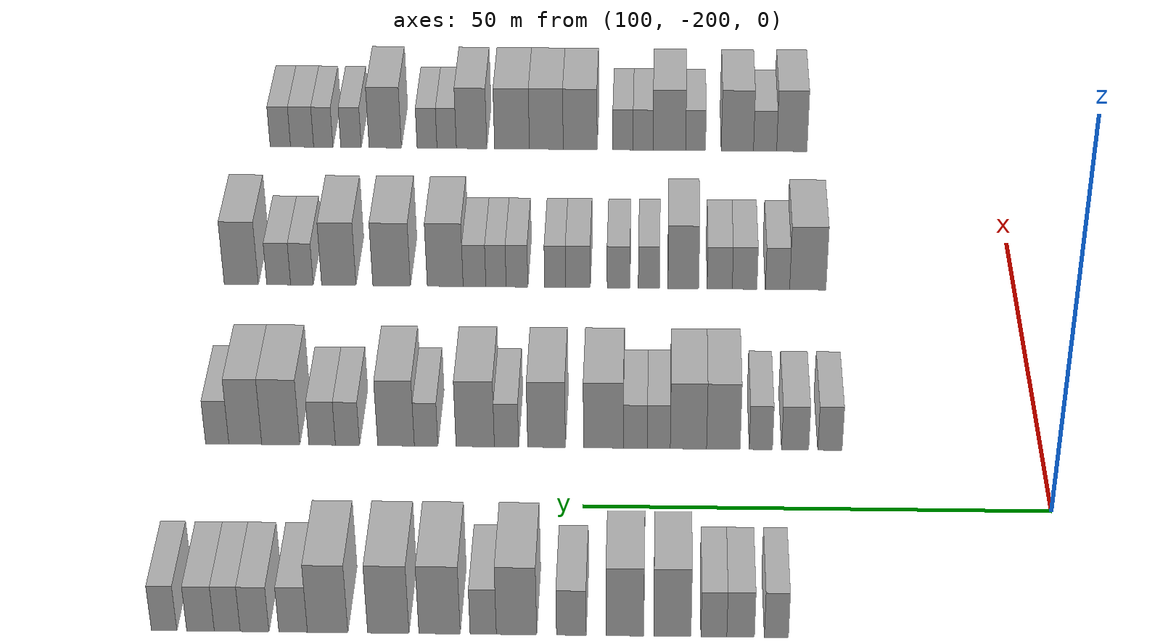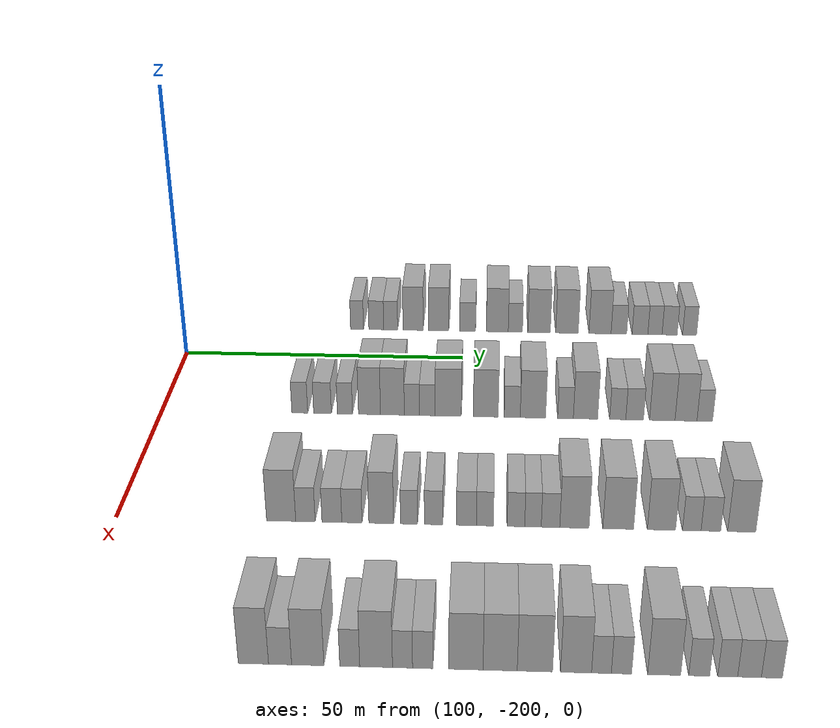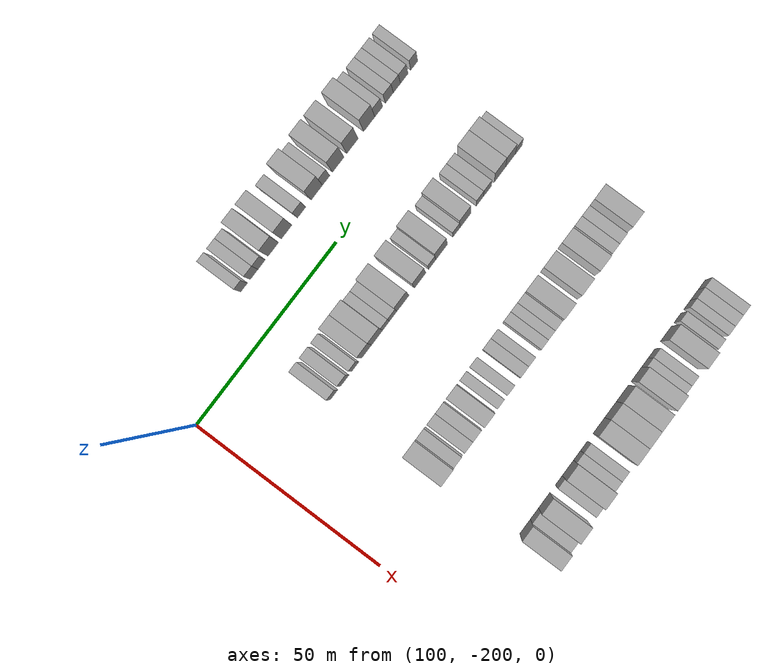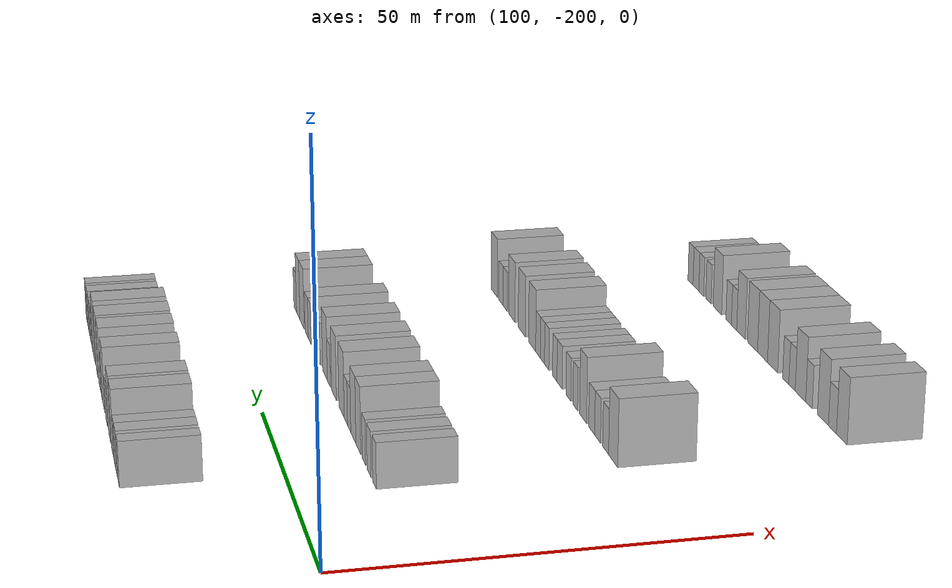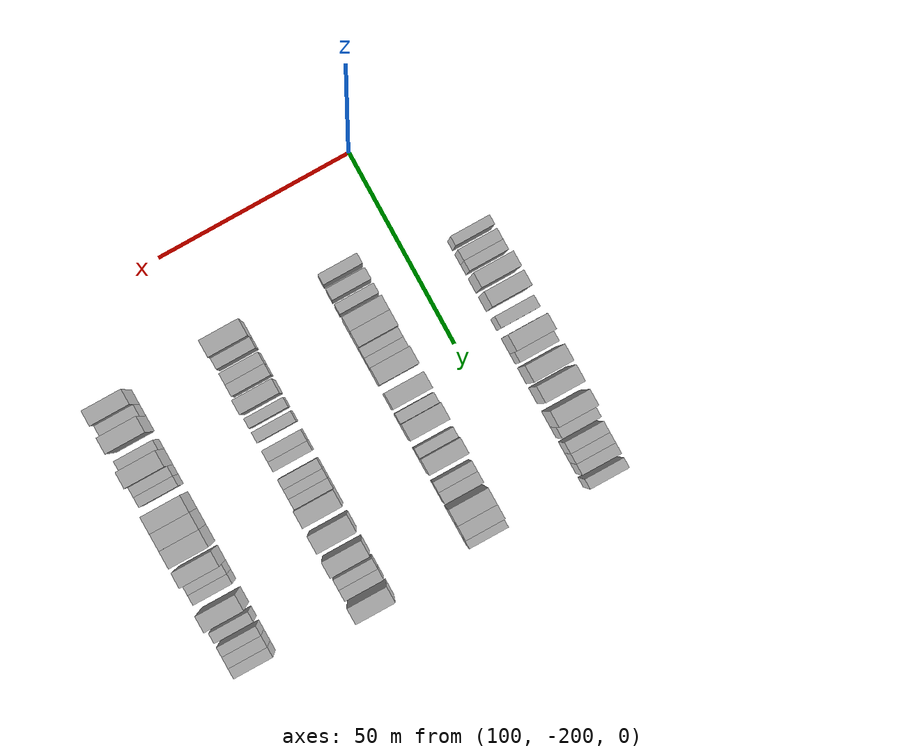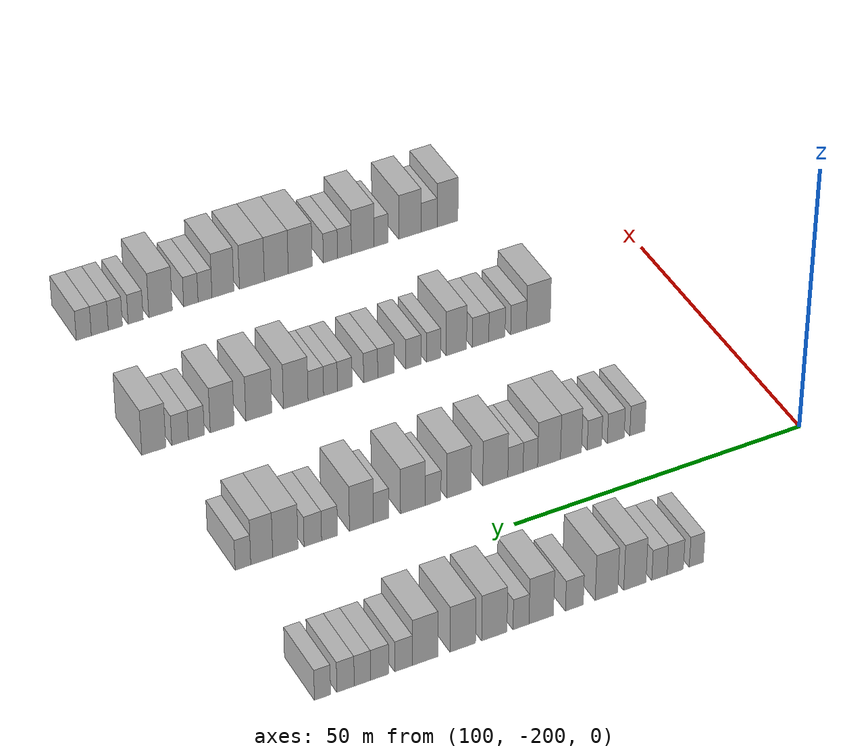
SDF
<sdf version="1.6">
 <world name="default">
  <model name="building_527">
   <static>1</static>
   <pose>85.0000 -170.0316 0 0.000000 0.000000 0.000000</pose>
   <link name="link">
    <pose>0 0 3.00 0 0 0</pose>
    <collision name="collision"><geometry><box><size>10.0000 2.4276 6.0000</size></box></geometry></collision>
    <visual name="visual">
     <cast_shadows>0</cast_shadows>
     <geometry><box><size>10.0000 2.4276 6.0000</size></box></geometry>
     <material>
      <script>
       <uri>model://HANNAS_wall/materials/scripts</uri>
       <uri>model://HANNAS_wall/materials/textures</uri>
       <name>vrc/HANNAS_wall</name>
      </script>
     </material>
    </visual>
   </link>
  </model>
  <model name="building_528">
   <static>1</static>
   <pose>85.0000 -166.4249 0 0.000000 0.000000 0.000000</pose>
   <link name="link">
    <pose>0 0 3.00 0 0 0</pose>
    <collision name="collision"><geometry><box><size>10.0000 2.7856 6.0000</size></box></geometry></collision>
    <visual name="visual">
     <cast_shadows>0</cast_shadows>
     <geometry><box><size>10.0000 2.7856 6.0000</size></box></geometry>
     <material>
      <script>
       <uri>model://HANNAS_wall/materials/scripts</uri>
       <uri>model://HANNAS_wall/materials/textures</uri>
       <name>vrc/HANNAS_wall</name>
      </script>
     </material>
    </visual>
   </link>
  </model>
  <model name="building_529">
   <static>1</static>
   <pose>85.0000 -163.7245 0 0.000000 0.000000 0.000000</pose>
   <link name="link">
    <pose>0 0 3.00 0 0 0</pose>
    <collision name="collision"><geometry><box><size>10.0000 2.6153 6.0000</size></box></geometry></collision>
    <visual name="visual">
     <cast_shadows>0</cast_shadows>
     <geometry><box><size>10.0000 2.6153 6.0000</size></box></geometry>
     <material>
      <script>
       <uri>model://HANNAS_wall/materials/scripts</uri>
       <uri>model://HANNAS_wall/materials/textures</uri>
       <name>vrc/HANNAS_wall</name>
      </script>
     </material>
    </visual>
   </link>
  </model>
  <model name="building_530">
   <static>1</static>
   <pose>85.0000 -159.5327 0 0.000000 0.000000 0.000000</pose>
   <link name="link">
    <pose>0 0 4.50 0 0 0</pose>
    <collision name="collision"><geometry><box><size>10.0000 3.7682 9.0000</size></box></geometry></collision>
    <visual name="visual">
     <cast_shadows>0</cast_shadows>
     <geometry><box><size>10.0000 3.7682 9.0000</size></box></geometry>
     <material>
      <script>
       <uri>model://HANNAS_wall/materials/scripts</uri>
       <uri>model://HANNAS_wall/materials/textures</uri>
       <name>vrc/HANNAS_wall</name>
      </script>
     </material>
    </visual>
   </link>
  </model>
  <model name="building_531">
   <static>1</static>
   <pose>85.0000 -154.7418 0 0.000000 0.000000 0.000000</pose>
   <link name="link">
    <pose>0 0 4.50 0 0 0</pose>
    <collision name="collision"><geometry><box><size>10.0000 3.8137 9.0000</size></box></geometry></collision>
    <visual name="visual">
     <cast_shadows>0</cast_shadows>
     <geometry><box><size>10.0000 3.8137 9.0000</size></box></geometry>
     <material>
      <script>
       <uri>model://HANNAS_wall/materials/scripts</uri>
       <uri>model://HANNAS_wall/materials/textures</uri>
       <name>vrc/HANNAS_wall</name>
      </script>
     </material>
    </visual>
   </link>
  </model>
  <model name="building_532">
   <static>1</static>
   <pose>85.0000 -149.3360 0 0.000000 0.000000 0.000000</pose>
   <link name="link">
    <pose>0 0 3.00 0 0 0</pose>
    <collision name="collision"><geometry><box><size>10.0000 2.9979 6.0000</size></box></geometry></collision>
    <visual name="visual">
     <cast_shadows>0</cast_shadows>
     <geometry><box><size>10.0000 2.9979 6.0000</size></box></geometry>
     <material>
      <script>
       <uri>model://HANNAS_wall/materials/scripts</uri>
       <uri>model://HANNAS_wall/materials/textures</uri>
       <name>vrc/HANNAS_wall</name>
      </script>
     </material>
    </visual>
   </link>
  </model>
  <model name="building_533">
   <static>1</static>
   <pose>85.0000 -143.7953 0 0.000000 0.000000 0.000000</pose>
   <link name="link">
    <pose>0 0 4.50 0 0 0</pose>
    <collision name="collision"><geometry><box><size>10.0000 4.0837 9.0000</size></box></geometry></collision>
    <visual name="visual">
     <cast_shadows>0</cast_shadows>
     <geometry><box><size>10.0000 4.0837 9.0000</size></box></geometry>
     <material>
      <script>
       <uri>model://HANNAS_wall/materials/scripts</uri>
       <uri>model://HANNAS_wall/materials/textures</uri>
       <name>vrc/HANNAS_wall</name>
      </script>
     </material>
    </visual>
   </link>
  </model>
  <model name="building_534">
   <static>1</static>
   <pose>85.0000 -140.4273 0 0.000000 0.000000 0.000000</pose>
   <link name="link">
    <pose>0 0 3.00 0 0 0</pose>
    <collision name="collision"><geometry><box><size>10.0000 2.6522 6.0000</size></box></geometry></collision>
    <visual name="visual">
     <cast_shadows>0</cast_shadows>
     <geometry><box><size>10.0000 2.6522 6.0000</size></box></geometry>
     <material>
      <script>
       <uri>model://HANNAS_wall/materials/scripts</uri>
       <uri>model://HANNAS_wall/materials/textures</uri>
       <name>vrc/HANNAS_wall</name>
      </script>
     </material>
    </visual>
   </link>
  </model>
  <model name="building_535">
   <static>1</static>
   <pose>85.0000 -136.0098 0 0.000000 0.000000 0.000000</pose>
   <link name="link">
    <pose>0 0 4.50 0 0 0</pose>
    <collision name="collision"><geometry><box><size>10.0000 4.1829 9.0000</size></box></geometry></collision>
    <visual name="visual">
     <cast_shadows>0</cast_shadows>
     <geometry><box><size>10.0000 4.1829 9.0000</size></box></geometry>
     <material>
      <script>
       <uri>model://HANNAS_wall/materials/scripts</uri>
       <uri>model://HANNAS_wall/materials/textures</uri>
       <name>vrc/HANNAS_wall</name>
      </script>
     </material>
    </visual>
   </link>
  </model>
  <model name="building_536">
   <static>1</static>
   <pose>85.0000 -130.8243 0 0.000000 0.000000 0.000000</pose>
   <link name="link">
    <pose>0 0 4.50 0 0 0</pose>
    <collision name="collision"><geometry><box><size>10.0000 4.1880 9.0000</size></box></geometry></collision>
    <visual name="visual">
     <cast_shadows>0</cast_shadows>
     <geometry><box><size>10.0000 4.1880 9.0000</size></box></geometry>
     <material>
      <script>
       <uri>model://HANNAS_wall/materials/scripts</uri>
       <uri>model://HANNAS_wall/materials/textures</uri>
       <name>vrc/HANNAS_wall</name>
      </script>
     </material>
    </visual>
   </link>
  </model>
  <model name="building_537">
   <static>1</static>
   <pose>85.0000 -124.6805 0 0.000000 0.000000 0.000000</pose>
   <link name="link">
    <pose>0 0 4.50 0 0 0</pose>
    <collision name="collision"><geometry><box><size>10.0000 4.0997 9.0000</size></box></geometry></collision>
    <visual name="visual">
     <cast_shadows>0</cast_shadows>
     <geometry><box><size>10.0000 4.0997 9.0000</size></box></geometry>
     <material>
      <script>
       <uri>model://HANNAS_wall/materials/scripts</uri>
       <uri>model://HANNAS_wall/materials/textures</uri>
       <name>vrc/HANNAS_wall</name>
      </script>
     </material>
    </visual>
   </link>
  </model>
  <model name="building_538">
   <static>1</static>
   <pose>85.0000 -121.1832 0 0.000000 0.000000 0.000000</pose>
   <link name="link">
    <pose>0 0 3.00 0 0 0</pose>
    <collision name="collision"><geometry><box><size>10.0000 2.8948 6.0000</size></box></geometry></collision>
    <visual name="visual">
     <cast_shadows>0</cast_shadows>
     <geometry><box><size>10.0000 2.8948 6.0000</size></box></geometry>
     <material>
      <script>
       <uri>model://HANNAS_wall/materials/scripts</uri>
       <uri>model://HANNAS_wall/materials/textures</uri>
       <name>vrc/HANNAS_wall</name>
      </script>
     </material>
    </visual>
   </link>
  </model>
  <model name="building_539">
   <static>1</static>
   <pose>85.0000 -117.2781 0 0.000000 0.000000 0.000000</pose>
   <link name="link">
    <pose>0 0 3.00 0 0 0</pose>
    <collision name="collision"><geometry><box><size>10.0000 2.9156 6.0000</size></box></geometry></collision>
    <visual name="visual">
     <cast_shadows>0</cast_shadows>
     <geometry><box><size>10.0000 2.9156 6.0000</size></box></geometry>
     <material>
      <script>
       <uri>model://HANNAS_wall/materials/scripts</uri>
       <uri>model://HANNAS_wall/materials/textures</uri>
       <name>vrc/HANNAS_wall</name>
      </script>
     </material>
    </visual>
   </link>
  </model>
  <model name="building_540">
   <static>1</static>
   <pose>85.0000 -114.5073 0 0.000000 0.000000 0.000000</pose>
   <link name="link">
    <pose>0 0 3.00 0 0 0</pose>
    <collision name="collision"><geometry><box><size>10.0000 2.6259 6.0000</size></box></geometry></collision>
    <visual name="visual">
     <cast_shadows>0</cast_shadows>
     <geometry><box><size>10.0000 2.6259 6.0000</size></box></geometry>
     <material>
      <script>
       <uri>model://HANNAS_wall/materials/scripts</uri>
       <uri>model://HANNAS_wall/materials/textures</uri>
       <name>vrc/HANNAS_wall</name>
      </script>
     </material>
    </visual>
   </link>
  </model>
  <model name="building_541">
   <static>1</static>
   <pose>85.0000 -111.7978 0 0.000000 0.000000 0.000000</pose>
   <link name="link">
    <pose>0 0 3.00 0 0 0</pose>
    <collision name="collision"><geometry><box><size>10.0000 2.7933 6.0000</size></box></geometry></collision>
    <visual name="visual">
     <cast_shadows>0</cast_shadows>
     <geometry><box><size>10.0000 2.7933 6.0000</size></box></geometry>
     <material>
      <script>
       <uri>model://HANNAS_wall/materials/scripts</uri>
       <uri>model://HANNAS_wall/materials/textures</uri>
       <name>vrc/HANNAS_wall</name>
      </script>
     </material>
    </visual>
   </link>
  </model>
  <model name="building_542">
   <static>1</static>
   <pose>85.0000 -108.1105 0 0.000000 0.000000 0.000000</pose>
   <link name="link">
    <pose>0 0 3.00 0 0 0</pose>
    <collision name="collision"><geometry><box><size>10.0000 2.5813 6.0000</size></box></geometry></collision>
    <visual name="visual">
     <cast_shadows>0</cast_shadows>
     <geometry><box><size>10.0000 2.5813 6.0000</size></box></geometry>
     <material>
      <script>
       <uri>model://HANNAS_wall/materials/scripts</uri>
       <uri>model://HANNAS_wall/materials/textures</uri>
       <name>vrc/HANNAS_wall</name>
      </script>
     </material>
    </visual>
   </link>
  </model>
  <model name="building_740">
   <static>1</static>
   <pose>115.0000 -176.7858 0 0.000000 0.000000 0.000000</pose>
   <link name="link">
    <pose>0 0 3.00 0 0 0</pose>
    <collision name="collision"><geometry><box><size>10.0000 2.6542 6.0000</size></box></geometry></collision>
    <visual name="visual">
     <cast_shadows>0</cast_shadows>
     <geometry><box><size>10.0000 2.6542 6.0000</size></box></geometry>
     <material>
      <script>
       <uri>model://HANNAS_wall/materials/scripts</uri>
       <uri>model://HANNAS_wall/materials/textures</uri>
       <name>vrc/HANNAS_wall</name>
      </script>
     </material>
    </visual>
   </link>
  </model>
  <model name="building_741">
   <static>1</static>
   <pose>115.0000 -172.9746 0 0.000000 0.000000 0.000000</pose>
   <link name="link">
    <pose>0 0 3.00 0 0 0</pose>
    <collision name="collision"><geometry><box><size>10.0000 2.9684 6.0000</size></box></geometry></collision>
    <visual name="visual">
     <cast_shadows>0</cast_shadows>
     <geometry><box><size>10.0000 2.9684 6.0000</size></box></geometry>
     <material>
      <script>
       <uri>model://HANNAS_wall/materials/scripts</uri>
       <uri>model://HANNAS_wall/materials/textures</uri>
       <name>vrc/HANNAS_wall</name>
      </script>
     </material>
    </visual>
   </link>
  </model>
  <model name="building_742">
   <static>1</static>
   <pose>115.0000 -169.2175 0 0.000000 0.000000 0.000000</pose>
   <link name="link">
    <pose>0 0 3.00 0 0 0</pose>
    <collision name="collision"><geometry><box><size>10.0000 2.5458 6.0000</size></box></geometry></collision>
    <visual name="visual">
     <cast_shadows>0</cast_shadows>
     <geometry><box><size>10.0000 2.5458 6.0000</size></box></geometry>
     <material>
      <script>
       <uri>model://HANNAS_wall/materials/scripts</uri>
       <uri>model://HANNAS_wall/materials/textures</uri>
       <name>vrc/HANNAS_wall</name>
      </script>
     </material>
    </visual>
   </link>
  </model>
  <model name="building_743">
   <static>1</static>
   <pose>115.0000 -165.1058 0 0.000000 0.000000 0.000000</pose>
   <link name="link">
    <pose>0 0 4.50 0 0 0</pose>
    <collision name="collision"><geometry><box><size>10.0000 3.6775 9.0000</size></box></geometry></collision>
    <visual name="visual">
     <cast_shadows>0</cast_shadows>
     <geometry><box><size>10.0000 3.6775 9.0000</size></box></geometry>
     <material>
      <script>
       <uri>model://HANNAS_wall/materials/scripts</uri>
       <uri>model://HANNAS_wall/materials/textures</uri>
       <name>vrc/HANNAS_wall</name>
      </script>
     </material>
    </visual>
   </link>
  </model>
  <model name="building_744">
   <static>1</static>
   <pose>115.0000 -161.2777 0 0.000000 0.000000 0.000000</pose>
   <link name="link">
    <pose>0 0 4.50 0 0 0</pose>
    <collision name="collision"><geometry><box><size>10.0000 3.9788 9.0000</size></box></geometry></collision>
    <visual name="visual">
     <cast_shadows>0</cast_shadows>
     <geometry><box><size>10.0000 3.9788 9.0000</size></box></geometry>
     <material>
      <script>
       <uri>model://HANNAS_wall/materials/scripts</uri>
       <uri>model://HANNAS_wall/materials/textures</uri>
       <name>vrc/HANNAS_wall</name>
      </script>
     </material>
    </visual>
   </link>
  </model>
  <model name="building_745">
   <static>1</static>
   <pose>115.0000 -158.0272 0 0.000000 0.000000 0.000000</pose>
   <link name="link">
    <pose>0 0 3.00 0 0 0</pose>
    <collision name="collision"><geometry><box><size>10.0000 2.5222 6.0000</size></box></geometry></collision>
    <visual name="visual">
     <cast_shadows>0</cast_shadows>
     <geometry><box><size>10.0000 2.5222 6.0000</size></box></geometry>
     <material>
      <script>
       <uri>model://HANNAS_wall/materials/scripts</uri>
       <uri>model://HANNAS_wall/materials/textures</uri>
       <name>vrc/HANNAS_wall</name>
      </script>
     </material>
    </visual>
   </link>
  </model>
  <model name="building_746">
   <static>1</static>
   <pose>115.0000 -155.4476 0 0.000000 0.000000 0.000000</pose>
   <link name="link">
    <pose>0 0 3.00 0 0 0</pose>
    <collision name="collision"><geometry><box><size>10.0000 2.6370 6.0000</size></box></geometry></collision>
    <visual name="visual">
     <cast_shadows>0</cast_shadows>
     <geometry><box><size>10.0000 2.6370 6.0000</size></box></geometry>
     <material>
      <script>
       <uri>model://HANNAS_wall/materials/scripts</uri>
       <uri>model://HANNAS_wall/materials/textures</uri>
       <name>vrc/HANNAS_wall</name>
      </script>
     </material>
    </visual>
   </link>
  </model>
  <model name="building_747">
   <static>1</static>
   <pose>115.0000 -151.9599 0 0.000000 0.000000 0.000000</pose>
   <link name="link">
    <pose>0 0 4.50 0 0 0</pose>
    <collision name="collision"><geometry><box><size>10.0000 4.3385 9.0000</size></box></geometry></collision>
    <visual name="visual">
     <cast_shadows>0</cast_shadows>
     <geometry><box><size>10.0000 4.3385 9.0000</size></box></geometry>
     <material>
      <script>
       <uri>model://HANNAS_wall/materials/scripts</uri>
       <uri>model://HANNAS_wall/materials/textures</uri>
       <name>vrc/HANNAS_wall</name>
      </script>
     </material>
    </visual>
   </link>
  </model>
  <model name="building_748">
   <static>1</static>
   <pose>115.0000 -145.7211 0 0.000000 0.000000 0.000000</pose>
   <link name="link">
    <pose>0 0 4.50 0 0 0</pose>
    <collision name="collision"><geometry><box><size>10.0000 4.1390 9.0000</size></box></geometry></collision>
    <visual name="visual">
     <cast_shadows>0</cast_shadows>
     <geometry><box><size>10.0000 4.1390 9.0000</size></box></geometry>
     <material>
      <script>
       <uri>model://HANNAS_wall/materials/scripts</uri>
       <uri>model://HANNAS_wall/materials/textures</uri>
       <name>vrc/HANNAS_wall</name>
      </script>
     </material>
    </visual>
   </link>
  </model>
  <model name="building_749">
   <static>1</static>
   <pose>115.0000 -141.3209 0 0.000000 0.000000 0.000000</pose>
   <link name="link">
    <pose>0 0 3.00 0 0 0</pose>
    <collision name="collision"><geometry><box><size>10.0000 2.6614 6.0000</size></box></geometry></collision>
    <visual name="visual">
     <cast_shadows>0</cast_shadows>
     <geometry><box><size>10.0000 2.6614 6.0000</size></box></geometry>
     <material>
      <script>
       <uri>model://HANNAS_wall/materials/scripts</uri>
       <uri>model://HANNAS_wall/materials/textures</uri>
       <name>vrc/HANNAS_wall</name>
      </script>
     </material>
    </visual>
   </link>
  </model>
  <model name="building_750">
   <static>1</static>
   <pose>115.0000 -137.8860 0 0.000000 0.000000 0.000000</pose>
   <link name="link">
    <pose>0 0 4.50 0 0 0</pose>
    <collision name="collision"><geometry><box><size>10.0000 4.2084 9.0000</size></box></geometry></collision>
    <visual name="visual">
     <cast_shadows>0</cast_shadows>
     <geometry><box><size>10.0000 4.2084 9.0000</size></box></geometry>
     <material>
      <script>
       <uri>model://HANNAS_wall/materials/scripts</uri>
       <uri>model://HANNAS_wall/materials/textures</uri>
       <name>vrc/HANNAS_wall</name>
      </script>
     </material>
    </visual>
   </link>
  </model>
  <model name="building_751">
   <static>1</static>
   <pose>115.0000 -132.4882 0 0.000000 0.000000 0.000000</pose>
   <link name="link">
    <pose>0 0 3.00 0 0 0</pose>
    <collision name="collision"><geometry><box><size>10.0000 2.5872 6.0000</size></box></geometry></collision>
    <visual name="visual">
     <cast_shadows>0</cast_shadows>
     <geometry><box><size>10.0000 2.5872 6.0000</size></box></geometry>
     <material>
      <script>
       <uri>model://HANNAS_wall/materials/scripts</uri>
       <uri>model://HANNAS_wall/materials/textures</uri>
       <name>vrc/HANNAS_wall</name>
      </script>
     </material>
    </visual>
   </link>
  </model>
  <model name="building_752">
   <static>1</static>
   <pose>115.0000 -129.1830 0 0.000000 0.000000 0.000000</pose>
   <link name="link">
    <pose>0 0 4.50 0 0 0</pose>
    <collision name="collision"><geometry><box><size>10.0000 4.0232 9.0000</size></box></geometry></collision>
    <visual name="visual">
     <cast_shadows>0</cast_shadows>
     <geometry><box><size>10.0000 4.0232 9.0000</size></box></geometry>
     <material>
      <script>
       <uri>model://HANNAS_wall/materials/scripts</uri>
       <uri>model://HANNAS_wall/materials/textures</uri>
       <name>vrc/HANNAS_wall</name>
      </script>
     </material>
    </visual>
   </link>
  </model>
  <model name="building_753">
   <static>1</static>
   <pose>115.0000 -123.8432 0 0.000000 0.000000 0.000000</pose>
   <link name="link">
    <pose>0 0 3.00 0 0 0</pose>
    <collision name="collision"><geometry><box><size>10.0000 2.6564 6.0000</size></box></geometry></collision>
    <visual name="visual">
     <cast_shadows>0</cast_shadows>
     <geometry><box><size>10.0000 2.6564 6.0000</size></box></geometry>
     <material>
      <script>
       <uri>model://HANNAS_wall/materials/scripts</uri>
       <uri>model://HANNAS_wall/materials/textures</uri>
       <name>vrc/HANNAS_wall</name>
      </script>
     </material>
    </visual>
   </link>
  </model>
  <model name="building_754">
   <static>1</static>
   <pose>115.0000 -121.0573 0 0.000000 0.000000 0.000000</pose>
   <link name="link">
    <pose>0 0 3.00 0 0 0</pose>
    <collision name="collision"><geometry><box><size>10.0000 2.9155 6.0000</size></box></geometry></collision>
    <visual name="visual">
     <cast_shadows>0</cast_shadows>
     <geometry><box><size>10.0000 2.9155 6.0000</size></box></geometry>
     <material>
      <script>
       <uri>model://HANNAS_wall/materials/scripts</uri>
       <uri>model://HANNAS_wall/materials/textures</uri>
       <name>vrc/HANNAS_wall</name>
      </script>
     </material>
    </visual>
   </link>
  </model>
  <model name="building_755">
   <static>1</static>
   <pose>115.0000 -116.5032 0 0.000000 0.000000 0.000000</pose>
   <link name="link">
    <pose>0 0 4.50 0 0 0</pose>
    <collision name="collision"><geometry><box><size>10.0000 4.1927 9.0000</size></box></geometry></collision>
    <visual name="visual">
     <cast_shadows>0</cast_shadows>
     <geometry><box><size>10.0000 4.1927 9.0000</size></box></geometry>
     <material>
      <script>
       <uri>model://HANNAS_wall/materials/scripts</uri>
       <uri>model://HANNAS_wall/materials/textures</uri>
       <name>vrc/HANNAS_wall</name>
      </script>
     </material>
    </visual>
   </link>
  </model>
  <model name="building_756">
   <static>1</static>
   <pose>115.0000 -112.5969 0 0.000000 0.000000 0.000000</pose>
   <link name="link">
    <pose>0 0 4.50 0 0 0</pose>
    <collision name="collision"><geometry><box><size>10.0000 3.6198 9.0000</size></box></geometry></collision>
    <visual name="visual">
     <cast_shadows>0</cast_shadows>
     <geometry><box><size>10.0000 3.6198 9.0000</size></box></geometry>
     <material>
      <script>
       <uri>model://HANNAS_wall/materials/scripts</uri>
       <uri>model://HANNAS_wall/materials/textures</uri>
       <name>vrc/HANNAS_wall</name>
      </script>
     </material>
    </visual>
   </link>
  </model>
  <model name="building_757">
   <static>1</static>
   <pose>115.0000 -109.5074 0 0.000000 0.000000 0.000000</pose>
   <link name="link">
    <pose>0 0 3.00 0 0 0</pose>
    <collision name="collision"><geometry><box><size>10.0000 2.5591 6.0000</size></box></geometry></collision>
    <visual name="visual">
     <cast_shadows>0</cast_shadows>
     <geometry><box><size>10.0000 2.5591 6.0000</size></box></geometry>
     <material>
      <script>
       <uri>model://HANNAS_wall/materials/scripts</uri>
       <uri>model://HANNAS_wall/materials/textures</uri>
       <name>vrc/HANNAS_wall</name>
      </script>
     </material>
    </visual>
   </link>
  </model>
  <model name="building_962">
   <static>1</static>
   <pose>145.0000 -175.5149 0 0.000000 0.000000 0.000000</pose>
   <link name="link">
    <pose>0 0 4.50 0 0 0</pose>
    <collision name="collision"><geometry><box><size>10.0000 4.2917 9.0000</size></box></geometry></collision>
    <visual name="visual">
     <cast_shadows>0</cast_shadows>
     <geometry><box><size>10.0000 4.2917 9.0000</size></box></geometry>
     <material>
      <script>
       <uri>model://HANNAS_wall/materials/scripts</uri>
       <uri>model://HANNAS_wall/materials/textures</uri>
       <name>vrc/HANNAS_wall</name>
      </script>
     </material>
    </visual>
   </link>
  </model>
  <model name="building_963">
   <static>1</static>
   <pose>145.0000 -171.9367 0 0.000000 0.000000 0.000000</pose>
   <link name="link">
    <pose>0 0 3.00 0 0 0</pose>
    <collision name="collision"><geometry><box><size>10.0000 2.8647 6.0000</size></box></geometry></collision>
    <visual name="visual">
     <cast_shadows>0</cast_shadows>
     <geometry><box><size>10.0000 2.8647 6.0000</size></box></geometry>
     <material>
      <script>
       <uri>model://HANNAS_wall/materials/scripts</uri>
       <uri>model://HANNAS_wall/materials/textures</uri>
       <name>vrc/HANNAS_wall</name>
      </script>
     </material>
    </visual>
   </link>
  </model>
  <model name="building_964">
   <static>1</static>
   <pose>145.0000 -168.0432 0 0.000000 0.000000 0.000000</pose>
   <link name="link">
    <pose>0 0 3.00 0 0 0</pose>
    <collision name="collision"><geometry><box><size>10.0000 2.9222 6.0000</size></box></geometry></collision>
    <visual name="visual">
     <cast_shadows>0</cast_shadows>
     <geometry><box><size>10.0000 2.9222 6.0000</size></box></geometry>
     <material>
      <script>
       <uri>model://HANNAS_wall/materials/scripts</uri>
       <uri>model://HANNAS_wall/materials/textures</uri>
       <name>vrc/HANNAS_wall</name>
      </script>
     </material>
    </visual>
   </link>
  </model>
  <model name="building_965">
   <static>1</static>
   <pose>145.0000 -165.0948 0 0.000000 0.000000 0.000000</pose>
   <link name="link">
    <pose>0 0 3.00 0 0 0</pose>
    <collision name="collision"><geometry><box><size>10.0000 2.9747 6.0000</size></box></geometry></collision>
    <visual name="visual">
     <cast_shadows>0</cast_shadows>
     <geometry><box><size>10.0000 2.9747 6.0000</size></box></geometry>
     <material>
      <script>
       <uri>model://HANNAS_wall/materials/scripts</uri>
       <uri>model://HANNAS_wall/materials/textures</uri>
       <name>vrc/HANNAS_wall</name>
      </script>
     </material>
    </visual>
   </link>
  </model>
  <model name="building_966">
   <static>1</static>
   <pose>145.0000 -160.7909 0 0.000000 0.000000 0.000000</pose>
   <link name="link">
    <pose>0 0 4.50 0 0 0</pose>
    <collision name="collision"><geometry><box><size>10.0000 3.6329 9.0000</size></box></geometry></collision>
    <visual name="visual">
     <cast_shadows>0</cast_shadows>
     <geometry><box><size>10.0000 3.6329 9.0000</size></box></geometry>
     <material>
      <script>
       <uri>model://HANNAS_wall/materials/scripts</uri>
       <uri>model://HANNAS_wall/materials/textures</uri>
       <name>vrc/HANNAS_wall</name>
      </script>
     </material>
    </visual>
   </link>
  </model>
  <model name="building_967">
   <static>1</static>
   <pose>145.0000 -156.7232 0 0.000000 0.000000 0.000000</pose>
   <link name="link">
    <pose>0 0 3.00 0 0 0</pose>
    <collision name="collision"><geometry><box><size>10.0000 2.5025 6.0000</size></box></geometry></collision>
    <visual name="visual">
     <cast_shadows>0</cast_shadows>
     <geometry><box><size>10.0000 2.5025 6.0000</size></box></geometry>
     <material>
      <script>
       <uri>model://HANNAS_wall/materials/scripts</uri>
       <uri>model://HANNAS_wall/materials/textures</uri>
       <name>vrc/HANNAS_wall</name>
      </script>
     </material>
    </visual>
   </link>
  </model>
  <model name="building_968">
   <static>1</static>
   <pose>145.0000 -153.1299 0 0.000000 0.000000 0.000000</pose>
   <link name="link">
    <pose>0 0 3.00 0 0 0</pose>
    <collision name="collision"><geometry><box><size>10.0000 2.6841 6.0000</size></box></geometry></collision>
    <visual name="visual">
     <cast_shadows>0</cast_shadows>
     <geometry><box><size>10.0000 2.6841 6.0000</size></box></geometry>
     <material>
      <script>
       <uri>model://HANNAS_wall/materials/scripts</uri>
       <uri>model://HANNAS_wall/materials/textures</uri>
       <name>vrc/HANNAS_wall</name>
      </script>
     </material>
    </visual>
   </link>
  </model>
  <model name="building_969">
   <static>1</static>
   <pose>145.0000 -148.3282 0 0.000000 0.000000 0.000000</pose>
   <link name="link">
    <pose>0 0 3.00 0 0 0</pose>
    <collision name="collision"><geometry><box><size>10.0000 2.9192 6.0000</size></box></geometry></collision>
    <visual name="visual">
     <cast_shadows>0</cast_shadows>
     <geometry><box><size>10.0000 2.9192 6.0000</size></box></geometry>
     <material>
      <script>
       <uri>model://HANNAS_wall/materials/scripts</uri>
       <uri>model://HANNAS_wall/materials/textures</uri>
       <name>vrc/HANNAS_wall</name>
      </script>
     </material>
    </visual>
   </link>
  </model>
  <model name="building_970">
   <static>1</static>
   <pose>145.0000 -145.6302 0 0.000000 0.000000 0.000000</pose>
   <link name="link">
    <pose>0 0 3.00 0 0 0</pose>
    <collision name="collision"><geometry><box><size>10.0000 2.4768 6.0000</size></box></geometry></collision>
    <visual name="visual">
     <cast_shadows>0</cast_shadows>
     <geometry><box><size>10.0000 2.4768 6.0000</size></box></geometry>
     <material>
      <script>
       <uri>model://HANNAS_wall/materials/scripts</uri>
       <uri>model://HANNAS_wall/materials/textures</uri>
       <name>vrc/HANNAS_wall</name>
      </script>
     </material>
    </visual>
   </link>
  </model>
  <model name="building_971">
   <static>1</static>
   <pose>145.0000 -141.1068 0 0.000000 0.000000 0.000000</pose>
   <link name="link">
    <pose>0 0 3.00 0 0 0</pose>
    <collision name="collision"><geometry><box><size>10.0000 2.5699 6.0000</size></box></geometry></collision>
    <visual name="visual">
     <cast_shadows>0</cast_shadows>
     <geometry><box><size>10.0000 2.5699 6.0000</size></box></geometry>
     <material>
      <script>
       <uri>model://HANNAS_wall/materials/scripts</uri>
       <uri>model://HANNAS_wall/materials/textures</uri>
       <name>vrc/HANNAS_wall</name>
      </script>
     </material>
    </visual>
   </link>
  </model>
  <model name="building_972">
   <static>1</static>
   <pose>145.0000 -138.6177 0 0.000000 0.000000 0.000000</pose>
   <link name="link">
    <pose>0 0 3.00 0 0 0</pose>
    <collision name="collision"><geometry><box><size>10.0000 2.4083 6.0000</size></box></geometry></collision>
    <visual name="visual">
     <cast_shadows>0</cast_shadows>
     <geometry><box><size>10.0000 2.4083 6.0000</size></box></geometry>
     <material>
      <script>
       <uri>model://HANNAS_wall/materials/scripts</uri>
       <uri>model://HANNAS_wall/materials/textures</uri>
       <name>vrc/HANNAS_wall</name>
      </script>
     </material>
    </visual>
   </link>
  </model>
  <model name="building_973">
   <static>1</static>
   <pose>145.0000 -136.0646 0 0.000000 0.000000 0.000000</pose>
   <link name="link">
    <pose>0 0 3.00 0 0 0</pose>
    <collision name="collision"><geometry><box><size>10.0000 2.6978 6.0000</size></box></geometry></collision>
    <visual name="visual">
     <cast_shadows>0</cast_shadows>
     <geometry><box><size>10.0000 2.6978 6.0000</size></box></geometry>
     <material>
      <script>
       <uri>model://HANNAS_wall/materials/scripts</uri>
       <uri>model://HANNAS_wall/materials/textures</uri>
       <name>vrc/HANNAS_wall</name>
      </script>
     </material>
    </visual>
   </link>
  </model>
  <model name="building_974">
   <static>1</static>
   <pose>145.0000 -132.5908 0 0.000000 0.000000 0.000000</pose>
   <link name="link">
    <pose>0 0 4.50 0 0 0</pose>
    <collision name="collision"><geometry><box><size>10.0000 4.2499 9.0000</size></box></geometry></collision>
    <visual name="visual">
     <cast_shadows>0</cast_shadows>
     <geometry><box><size>10.0000 4.2499 9.0000</size></box></geometry>
     <material>
      <script>
       <uri>model://HANNAS_wall/materials/scripts</uri>
       <uri>model://HANNAS_wall/materials/textures</uri>
       <name>vrc/HANNAS_wall</name>
      </script>
     </material>
    </visual>
   </link>
  </model>
  <model name="building_975">
   <static>1</static>
   <pose>145.0000 -126.2356 0 0.000000 0.000000 0.000000</pose>
   <link name="link">
    <pose>0 0 4.50 0 0 0</pose>
    <collision name="collision"><geometry><box><size>10.0000 4.4606 9.0000</size></box></geometry></collision>
    <visual name="visual">
     <cast_shadows>0</cast_shadows>
     <geometry><box><size>10.0000 4.4606 9.0000</size></box></geometry>
     <material>
      <script>
       <uri>model://HANNAS_wall/materials/scripts</uri>
       <uri>model://HANNAS_wall/materials/textures</uri>
       <name>vrc/HANNAS_wall</name>
      </script>
     </material>
    </visual>
   </link>
  </model>
  <model name="building_976">
   <static>1</static>
   <pose>145.0000 -119.9651 0 0.000000 0.000000 0.000000</pose>
   <link name="link">
    <pose>0 0 4.50 0 0 0</pose>
    <collision name="collision"><geometry><box><size>10.0000 4.0803 9.0000</size></box></geometry></collision>
    <visual name="visual">
     <cast_shadows>0</cast_shadows>
     <geometry><box><size>10.0000 4.0803 9.0000</size></box></geometry>
     <material>
      <script>
       <uri>model://HANNAS_wall/materials/scripts</uri>
       <uri>model://HANNAS_wall/materials/textures</uri>
       <name>vrc/HANNAS_wall</name>
      </script>
     </material>
    </visual>
   </link>
  </model>
  <model name="building_977">
   <static>1</static>
   <pose>145.0000 -115.5844 0 0.000000 0.000000 0.000000</pose>
   <link name="link">
    <pose>0 0 3.00 0 0 0</pose>
    <collision name="collision"><geometry><box><size>10.0000 2.6810 6.0000</size></box></geometry></collision>
    <visual name="visual">
     <cast_shadows>0</cast_shadows>
     <geometry><box><size>10.0000 2.6810 6.0000</size></box></geometry>
     <material>
      <script>
       <uri>model://HANNAS_wall/materials/scripts</uri>
       <uri>model://HANNAS_wall/materials/textures</uri>
       <name>vrc/HANNAS_wall</name>
      </script>
     </material>
    </visual>
   </link>
  </model>
  <model name="building_978">
   <static>1</static>
   <pose>145.0000 -112.8252 0 0.000000 0.000000 0.000000</pose>
   <link name="link">
    <pose>0 0 3.00 0 0 0</pose>
    <collision name="collision"><geometry><box><size>10.0000 2.8375 6.0000</size></box></geometry></collision>
    <visual name="visual">
     <cast_shadows>0</cast_shadows>
     <geometry><box><size>10.0000 2.8375 6.0000</size></box></geometry>
     <material>
      <script>
       <uri>model://HANNAS_wall/materials/scripts</uri>
       <uri>model://HANNAS_wall/materials/textures</uri>
       <name>vrc/HANNAS_wall</name>
      </script>
     </material>
    </visual>
   </link>
  </model>
  <model name="building_979">
   <static>1</static>
   <pose>145.0000 -108.3825 0 0.000000 0.000000 0.000000</pose>
   <link name="link">
    <pose>0 0 4.50 0 0 0</pose>
    <collision name="collision"><geometry><box><size>10.0000 4.0479 9.0000</size></box></geometry></collision>
    <visual name="visual">
     <cast_shadows>0</cast_shadows>
     <geometry><box><size>10.0000 4.0479 9.0000</size></box></geometry>
     <material>
      <script>
       <uri>model://HANNAS_wall/materials/scripts</uri>
       <uri>model://HANNAS_wall/materials/textures</uri>
       <name>vrc/HANNAS_wall</name>
      </script>
     </material>
    </visual>
   </link>
  </model>
  <model name="building_1193">
   <static>1</static>
   <pose>175.0000 -174.6461 0 0.000000 0.000000 0.000000</pose>
   <link name="link">
    <pose>0 0 4.50 0 0 0</pose>
    <collision name="collision"><geometry><box><size>10.0000 3.8481 9.0000</size></box></geometry></collision>
    <visual name="visual">
     <cast_shadows>0</cast_shadows>
     <geometry><box><size>10.0000 3.8481 9.0000</size></box></geometry>
     <material>
      <script>
       <uri>model://HANNAS_wall/materials/scripts</uri>
       <uri>model://HANNAS_wall/materials/textures</uri>
       <name>vrc/HANNAS_wall</name>
      </script>
     </material>
    </visual>
   </link>
  </model>
  <model name="building_1194">
   <static>1</static>
   <pose>175.0000 -171.2531 0 0.000000 0.000000 0.000000</pose>
   <link name="link">
    <pose>0 0 3.00 0 0 0</pose>
    <collision name="collision"><geometry><box><size>10.0000 2.9379 6.0000</size></box></geometry></collision>
    <visual name="visual">
     <cast_shadows>0</cast_shadows>
     <geometry><box><size>10.0000 2.9379 6.0000</size></box></geometry>
     <material>
      <script>
       <uri>model://HANNAS_wall/materials/scripts</uri>
       <uri>model://HANNAS_wall/materials/textures</uri>
       <name>vrc/HANNAS_wall</name>
      </script>
     </material>
    </visual>
   </link>
  </model>
  <model name="building_1195">
   <static>1</static>
   <pose>175.0000 -167.7357 0 0.000000 0.000000 0.000000</pose>
   <link name="link">
    <pose>0 0 4.50 0 0 0</pose>
    <collision name="collision"><geometry><box><size>10.0000 4.0969 9.0000</size></box></geometry></collision>
    <visual name="visual">
     <cast_shadows>0</cast_shadows>
     <geometry><box><size>10.0000 4.0969 9.0000</size></box></geometry>
     <material>
      <script>
       <uri>model://HANNAS_wall/materials/scripts</uri>
       <uri>model://HANNAS_wall/materials/textures</uri>
       <name>vrc/HANNAS_wall</name>
      </script>
     </material>
    </visual>
   </link>
  </model>
  <model name="building_1196">
   <static>1</static>
   <pose>175.0000 -162.4232 0 0.000000 0.000000 0.000000</pose>
   <link name="link">
    <pose>0 0 3.00 0 0 0</pose>
    <collision name="collision"><geometry><box><size>10.0000 2.5281 6.0000</size></box></geometry></collision>
    <visual name="visual">
     <cast_shadows>0</cast_shadows>
     <geometry><box><size>10.0000 2.5281 6.0000</size></box></geometry>
     <material>
      <script>
       <uri>model://HANNAS_wall/materials/scripts</uri>
       <uri>model://HANNAS_wall/materials/textures</uri>
       <name>vrc/HANNAS_wall</name>
      </script>
     </material>
    </visual>
   </link>
  </model>
  <model name="building_1197">
   <static>1</static>
   <pose>175.0000 -159.0895 0 0.000000 0.000000 0.000000</pose>
   <link name="link">
    <pose>0 0 4.50 0 0 0</pose>
    <collision name="collision"><geometry><box><size>10.0000 4.1393 9.0000</size></box></geometry></collision>
    <visual name="visual">
     <cast_shadows>0</cast_shadows>
     <geometry><box><size>10.0000 4.1393 9.0000</size></box></geometry>
     <material>
      <script>
       <uri>model://HANNAS_wall/materials/scripts</uri>
       <uri>model://HANNAS_wall/materials/textures</uri>
       <name>vrc/HANNAS_wall</name>
      </script>
     </material>
    </visual>
   </link>
  </model>
  <model name="building_1198">
   <static>1</static>
   <pose>175.0000 -155.7549 0 0.000000 0.000000 0.000000</pose>
   <link name="link">
    <pose>0 0 3.00 0 0 0</pose>
    <collision name="collision"><geometry><box><size>10.0000 2.5298 6.0000</size></box></geometry></collision>
    <visual name="visual">
     <cast_shadows>0</cast_shadows>
     <geometry><box><size>10.0000 2.5298 6.0000</size></box></geometry>
     <material>
      <script>
       <uri>model://HANNAS_wall/materials/scripts</uri>
       <uri>model://HANNAS_wall/materials/textures</uri>
       <name>vrc/HANNAS_wall</name>
      </script>
     </material>
    </visual>
   </link>
  </model>
  <model name="building_1199">
   <static>1</static>
   <pose>175.0000 -153.2077 0 0.000000 0.000000 0.000000</pose>
   <link name="link">
    <pose>0 0 3.00 0 0 0</pose>
    <collision name="collision"><geometry><box><size>10.0000 2.5646 6.0000</size></box></geometry></collision>
    <visual name="visual">
     <cast_shadows>0</cast_shadows>
     <geometry><box><size>10.0000 2.5646 6.0000</size></box></geometry>
     <material>
      <script>
       <uri>model://HANNAS_wall/materials/scripts</uri>
       <uri>model://HANNAS_wall/materials/textures</uri>
       <name>vrc/HANNAS_wall</name>
      </script>
     </material>
    </visual>
   </link>
  </model>
  <model name="building_1200">
   <static>1</static>
   <pose>175.0000 -147.7703 0 0.000000 0.000000 0.000000</pose>
   <link name="link">
    <pose>0 0 4.50 0 0 0</pose>
    <collision name="collision"><geometry><box><size>10.0000 4.3100 9.0000</size></box></geometry></collision>
    <visual name="visual">
     <cast_shadows>0</cast_shadows>
     <geometry><box><size>10.0000 4.3100 9.0000</size></box></geometry>
     <material>
      <script>
       <uri>model://HANNAS_wall/materials/scripts</uri>
       <uri>model://HANNAS_wall/materials/textures</uri>
       <name>vrc/HANNAS_wall</name>
      </script>
     </material>
    </visual>
   </link>
  </model>
  <model name="building_1201">
   <static>1</static>
   <pose>175.0000 -143.4692 0 0.000000 0.000000 0.000000</pose>
   <link name="link">
    <pose>0 0 4.50 0 0 0</pose>
    <collision name="collision"><geometry><box><size>10.0000 4.2922 9.0000</size></box></geometry></collision>
    <visual name="visual">
     <cast_shadows>0</cast_shadows>
     <geometry><box><size>10.0000 4.2922 9.0000</size></box></geometry>
     <material>
      <script>
       <uri>model://HANNAS_wall/materials/scripts</uri>
       <uri>model://HANNAS_wall/materials/textures</uri>
       <name>vrc/HANNAS_wall</name>
      </script>
     </material>
    </visual>
   </link>
  </model>
  <model name="building_1202">
   <static>1</static>
   <pose>175.0000 -139.1092 0 0.000000 0.000000 0.000000</pose>
   <link name="link">
    <pose>0 0 4.50 0 0 0</pose>
    <collision name="collision"><geometry><box><size>10.0000 4.4277 9.0000</size></box></geometry></collision>
    <visual name="visual">
     <cast_shadows>0</cast_shadows>
     <geometry><box><size>10.0000 4.4277 9.0000</size></box></geometry>
     <material>
      <script>
       <uri>model://HANNAS_wall/materials/scripts</uri>
       <uri>model://HANNAS_wall/materials/textures</uri>
       <name>vrc/HANNAS_wall</name>
      </script>
     </material>
    </visual>
   </link>
  </model>
  <model name="building_1203">
   <static>1</static>
   <pose>175.0000 -133.9566 0 0.000000 0.000000 0.000000</pose>
   <link name="link">
    <pose>0 0 4.50 0 0 0</pose>
    <collision name="collision"><geometry><box><size>10.0000 3.8775 9.0000</size></box></geometry></collision>
    <visual name="visual">
     <cast_shadows>0</cast_shadows>
     <geometry><box><size>10.0000 3.8775 9.0000</size></box></geometry>
     <material>
      <script>
       <uri>model://HANNAS_wall/materials/scripts</uri>
       <uri>model://HANNAS_wall/materials/textures</uri>
       <name>vrc/HANNAS_wall</name>
      </script>
     </material>
    </visual>
   </link>
  </model>
  <model name="building_1204">
   <static>1</static>
   <pose>175.0000 -130.7836 0 0.000000 0.000000 0.000000</pose>
   <link name="link">
    <pose>0 0 3.00 0 0 0</pose>
    <collision name="collision"><geometry><box><size>10.0000 2.4685 6.0000</size></box></geometry></collision>
    <visual name="visual">
     <cast_shadows>0</cast_shadows>
     <geometry><box><size>10.0000 2.4685 6.0000</size></box></geometry>
     <material>
      <script>
       <uri>model://HANNAS_wall/materials/scripts</uri>
       <uri>model://HANNAS_wall/materials/textures</uri>
       <name>vrc/HANNAS_wall</name>
      </script>
     </material>
    </visual>
   </link>
  </model>
  <model name="building_1205">
   <static>1</static>
   <pose>175.0000 -128.2847 0 0.000000 0.000000 0.000000</pose>
   <link name="link">
    <pose>0 0 3.00 0 0 0</pose>
    <collision name="collision"><geometry><box><size>10.0000 2.5293 6.0000</size></box></geometry></collision>
    <visual name="visual">
     <cast_shadows>0</cast_shadows>
     <geometry><box><size>10.0000 2.5293 6.0000</size></box></geometry>
     <material>
      <script>
       <uri>model://HANNAS_wall/materials/scripts</uri>
       <uri>model://HANNAS_wall/materials/textures</uri>
       <name>vrc/HANNAS_wall</name>
      </script>
     </material>
    </visual>
   </link>
  </model>
  <model name="building_1206">
   <static>1</static>
   <pose>175.0000 -122.9628 0 0.000000 0.000000 0.000000</pose>
   <link name="link">
    <pose>0 0 4.50 0 0 0</pose>
    <collision name="collision"><geometry><box><size>10.0000 4.1145 9.0000</size></box></geometry></collision>
    <visual name="visual">
     <cast_shadows>0</cast_shadows>
     <geometry><box><size>10.0000 4.1145 9.0000</size></box></geometry>
     <material>
      <script>
       <uri>model://HANNAS_wall/materials/scripts</uri>
       <uri>model://HANNAS_wall/materials/textures</uri>
       <name>vrc/HANNAS_wall</name>
      </script>
     </material>
    </visual>
   </link>
  </model>
  <model name="building_1207">
   <static>1</static>
   <pose>175.0000 -118.5985 0 0.000000 0.000000 0.000000</pose>
   <link name="link">
    <pose>0 0 3.00 0 0 0</pose>
    <collision name="collision"><geometry><box><size>10.0000 2.6140 6.0000</size></box></geometry></collision>
    <visual name="visual">
     <cast_shadows>0</cast_shadows>
     <geometry><box><size>10.0000 2.6140 6.0000</size></box></geometry>
     <material>
      <script>
       <uri>model://HANNAS_wall/materials/scripts</uri>
       <uri>model://HANNAS_wall/materials/textures</uri>
       <name>vrc/HANNAS_wall</name>
      </script>
     </material>
    </visual>
   </link>
  </model>
  <model name="building_1208">
   <static>1</static>
   <pose>175.0000 -115.0606 0 0.000000 0.000000 0.000000</pose>
   <link name="link">
    <pose>0 0 3.00 0 0 0</pose>
    <collision name="collision"><geometry><box><size>10.0000 2.4620 6.0000</size></box></geometry></collision>
    <visual name="visual">
     <cast_shadows>0</cast_shadows>
     <geometry><box><size>10.0000 2.4620 6.0000</size></box></geometry>
     <material>
      <script>
       <uri>model://HANNAS_wall/materials/scripts</uri>
       <uri>model://HANNAS_wall/materials/textures</uri>
       <name>vrc/HANNAS_wall</name>
      </script>
     </material>
    </visual>
   </link>
  </model>
  <model name="building_1209">
   <static>1</static>
   <pose>175.0000 -112.3584 0 0.000000 0.000000 0.000000</pose>
   <link name="link">
    <pose>0 0 3.00 0 0 0</pose>
    <collision name="collision"><geometry><box><size>10.0000 2.9423 6.0000</size></box></geometry></collision>
    <visual name="visual">
     <cast_shadows>0</cast_shadows>
     <geometry><box><size>10.0000 2.9423 6.0000</size></box></geometry>
     <material>
      <script>
       <uri>model://HANNAS_wall/materials/scripts</uri>
       <uri>model://HANNAS_wall/materials/textures</uri>
       <name>vrc/HANNAS_wall</name>
      </script>
     </material>
    </visual>
   </link>
  </model>
  <model name="building_1210">
   <static>1</static>
   <pose>175.0000 -109.5895 0 0.000000 0.000000 0.000000</pose>
   <link name="link">
    <pose>0 0 3.00 0 0 0</pose>
    <collision name="collision"><geometry><box><size>10.0000 2.5956 6.0000</size></box></geometry></collision>
    <visual name="visual">
     <cast_shadows>0</cast_shadows>
     <geometry><box><size>10.0000 2.5956 6.0000</size></box></geometry>
     <material>
      <script>
       <uri>model://HANNAS_wall/materials/scripts</uri>
       <uri>model://HANNAS_wall/materials/textures</uri>
       <name>vrc/HANNAS_wall</name>
      </script>
     </material>
    </visual>
   </link>
  </model>
 </world>
</sdf>
